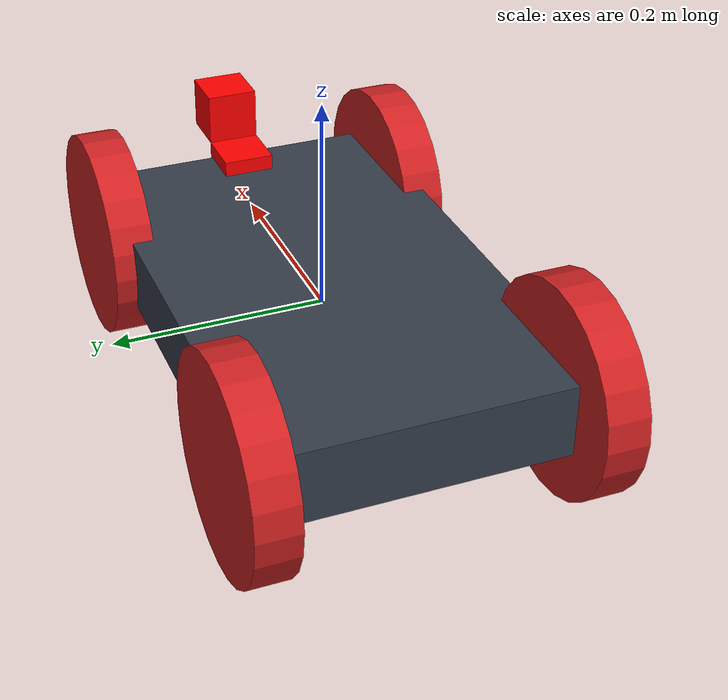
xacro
<?xml version="1.0"?>
<robot xmlns:xacro="http://www.ros.org/wiki/xacro" name="detectibot">
<xacro:include filename="$(find erl_assignment_3_robot)/urdf/robot.gazebo"/>

	<xacro:property name="length_wheel" value="0.04" />
	<xacro:property name="radius_wheel" value="0.1" />

	<xacro:macro name="default_inertial" params="mass">
               <inertial>
                       <mass value="${mass}" />
                       <origin rpy="0 1.5707 1.5707" xyz="0 0 0"/>
                       <inertia ixx="0.000526666666667" ixy="0" ixz="0" iyy="0.000526666666667" iyz="0" izz="0.001"/>
               </inertial>
	</xacro:macro>

    <xacro:macro name="wheel_geometry">
		<geometry>
       			<cylinder length="${length_wheel}" radius="${radius_wheel}"/>
     	</geometry>
	</xacro:macro>

  <material name="black">
    <color rgba="0.0 0.0 0.0 1.0"/>
  </material>
  <material name="blue">
    <color rgba="0.203125 0.23828125 0.28515625 1.0"/>
  </material>
  <material name="green">
    <color rgba="0.0 0.8 0.0 1.0"/>
  </material>
  <material name="grey">
    <color rgba="0.2 0.2 0.2 1.0"/>
  </material>
  <material name="orange">
    <color rgba="1.0 0.423529411765 0.0392156862745 1.0"/>
  </material>
  <material name="brown">
    <color rgba="0.870588235294 0.811764705882 0.764705882353 1.0"/>
  </material>
  <material name="red">
    <color rgba="0.80078125 0.12890625 0.1328125 1.0"/>
  </material>
  <material name="white">
    <color rgba="1.0 1.0 1.0 1.0"/>
  </material>

	  <link name="link_chassis">
    <!-- pose and inertial -->
    <pose>0 0 0.1 0 0 0</pose>
    <inertial>
      <mass value="5"/>
      <origin rpy="0 0 0" xyz="0 0 0.1"/>
      <inertia ixx="0.0395416666667" ixy="0" ixz="0" iyy="0.106208333333" iyz="0" izz="0.106208333333"/>
    </inertial>
    <!-- body -->
    <collision name="collision_chassis">
      <geometry>
        <box size="0.5 0.3 0.07"/>
      </geometry>
    </collision>
    <visual>
      <origin rpy="0 0 0" xyz="0 0 0"/>
      <geometry>
        <box size="0.5 0.3 0.07"/>
      </geometry>
      <material name="blue"/>
    </visual>
    <!-- caster front -->
  </link>

   <link name="link_back_right_wheel">
    <xacro:default_inertial mass="0.2"/>
    <collision name="link_back_right_wheel_collision">
      <origin rpy="0 1.5707 1.5707" xyz="0 0 0"/>
      <xacro:wheel_geometry />
    </collision>
    <visual name="link_back_right_wheel_visual">
      <origin rpy="0 1.5707 1.5707" xyz="0 0 0"/>
      <xacro:wheel_geometry />
      <material name="red"/>
    </visual>
  </link>

   <link name="link_back_left_wheel">
    <xacro:default_inertial mass="0.2"/>
    <collision name="link_back_left_wheel_collision">
      <origin rpy="0 1.5707 1.5707" xyz="0 0 0"/>
      <xacro:wheel_geometry />
    </collision>
    <visual name="link_back_left_wheel_visual">
      <origin rpy="0 1.5707 1.5707" xyz="0 0 0"/>
      <xacro:wheel_geometry />
      <material name="red"/>
    </visual>
  </link>

   <link name="link_front_right_wheel">
    <xacro:default_inertial mass="0.2"/>
    <collision name="link_front_right_wheel_collision">
      <origin rpy="0 1.5707 1.5707" xyz="0 0 0"/>
      <xacro:wheel_geometry />
    </collision>
    <visual name="link_front_right_wheel_visual">
      <origin rpy="0 1.5707 1.5707" xyz="0 0 0"/>
      <xacro:wheel_geometry />
      <material name="red"/>
    </visual>
  </link>

   <link name="link_front_left_wheel">
    <xacro:default_inertial mass="0.2"/>
    <collision name="link_front_left_wheel_collision">
      <origin rpy="0 1.5707 1.5707" xyz="0 0 0"/>
      <xacro:wheel_geometry />
    </collision>
    <visual name="link_front_left_wheel_visual">
      <origin rpy="0 1.5707 1.5707" xyz="0 0 0"/>
      <xacro:wheel_geometry />
      <material name="red"/>
    </visual>
  </link>

  <joint name="joint_back_right_wheel" type="continuous">
    <origin rpy="0 0 0" xyz="-0.20 0.15 0"/>
    <child link="link_back_right_wheel"/>
    <parent link="link_chassis"/>
    <axis rpy="0 0 0" xyz="0 1 0"/>
    <limit effort="10000" velocity="1000"/>
    <joint_properties damping="1.0" friction="1.0"/>
  </joint>

  <joint name="joint_back_left_wheel" type="continuous">
    <origin rpy="0 0 0" xyz="-0.20 -0.15 0"/>
    <child link="link_back_left_wheel"/>
    <parent link="link_chassis"/>
    <axis rpy="0 0 0" xyz="0 1 0"/>
    <limit effort="10000" velocity="1000"/>
    <joint_properties damping="1.0" friction="1.0"/>
  </joint>

  <joint name="joint_front_right_wheel" type="continuous">
    <origin rpy="0 0 0" xyz="0.20 0.15 0"/>
    <child link="link_front_right_wheel"/>
    <parent link="link_chassis"/>
    <axis rpy="0 0 0" xyz="0 1 0"/>
    <limit effort="10000" velocity="1000"/>
    <joint_properties damping="1.0" friction="1.0"/>
  </joint>

  <joint name="joint_front_left_wheel" type="continuous">
    <origin rpy="0 0 0" xyz="0.20 -0.15 0"/>
    <child link="link_front_left_wheel"/>
    <parent link="link_chassis"/>
    <axis rpy="0 0 0" xyz="0 1 0"/>
    <limit effort="10000" velocity="1000"/>
    <joint_properties damping="1.0" friction="1.0"/>
  </joint>

   <link name="hokuyo_link">
	    <collision>
	      <origin xyz="0 0 0.025" rpy="0 0 0"/>
	      <geometry>
		<box size="0.05 0.05 0.05"/>
	      </geometry>
	    </collision>
	    <visual>
	      <origin xyz="0 0 0.025" rpy="0 0 0"/>
	      <geometry>
		<box size="0.05 0.05 0.05"/>
	      </geometry>
	      <material name="red">
		<color rgba="1 0 0 1"/>
	      </material>
	    </visual>
	    <inertial>
	      <mass value="1e-5" />
	      <origin xyz="0 0 0" rpy="0 0 0"/>
	      <inertia ixx="1e-6" ixy="0" ixz="0" iyy="1e-6" iyz="0" izz="1e-6" />
	    </inertial>
 	 </link>

 	 <joint name="hokuyo_joint" type="fixed">
	    <axis xyz="0 1 0" />
	    <origin xyz="0.28 0 0.05" rpy="0 0 0"/>
	    <parent link="link_chassis"/>
	    <child link="hokuyo_link"/>
	 </joint>

	   <link name="camera_link">
	    <collision>
	      <origin xyz="0 0 0.025" rpy="0 0 0"/>
	      <geometry>
		<box size="0.05 0.05 0.05"/>
	      </geometry>
	    </collision>
	    <visual>
	      <origin xyz="0 0 0.025" rpy="0 0 0"/>
	      <geometry>
		<box size="0.05 0.05 0.05"/>
	      </geometry>
	      <material name="red">
		<color rgba="1 0 0 1"/>
	      </material>
	    </visual>
	    <inertial>
	      <mass value="1e-5" />
	      <origin xyz="0 0 0" rpy="0 0 0"/>
	      <inertia ixx="1e-6" ixy="0" ixz="0" iyy="1e-6" iyz="0" izz="1e-6" />
	    </inertial>
  </link>

  <joint name="camera_joint" type="fixed">
	    <axis xyz="0 1 0" />
	    <origin xyz="0.23 0 0.0" rpy="0 0 0"/>
	    <parent link="link_chassis"/>
	    <child link="camera_link"/>
	 </joint>

</robot>
